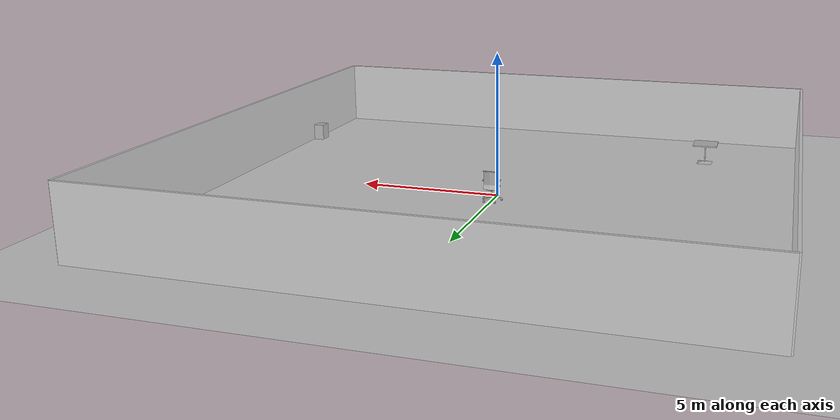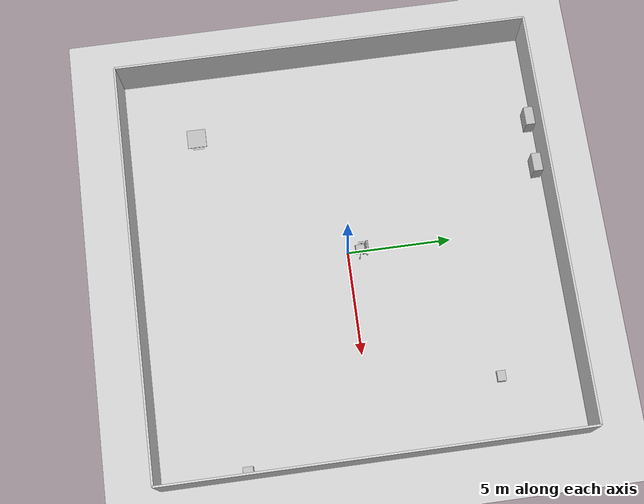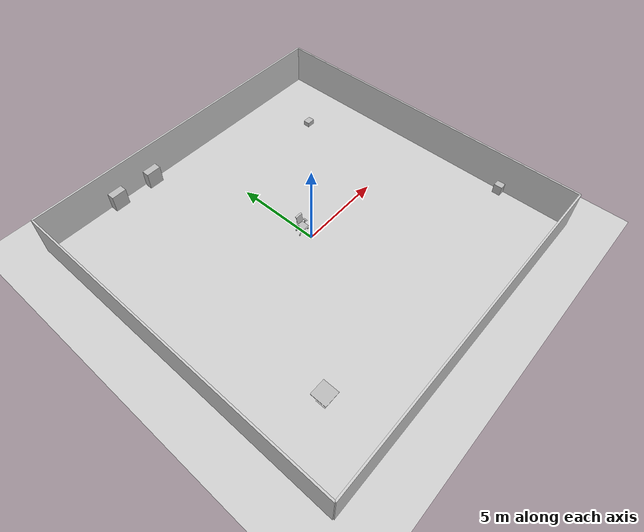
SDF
<sdf version="1.7">
 <world name="test_room">
  <light name="sun" type="directional">
   <pose>0 0 10 0 -0 0</pose>
   <diffuse>0.8 0.8 0.8 1</diffuse>
   <specular>0.2 0.2 0.2 1</specular>
   <attenuation>
    <range>1000</range>
    <constant>0.9</constant>
    <linear>0.01</linear>
    <quadratic>0.001</quadratic>
   </attenuation>
   <direction>-0.5 0.1 -0.9</direction>
   <spot><inner_angle>0</inner_angle><outer_angle>0</outer_angle><falloff>0</falloff></spot>
  </light>
  <model name="ground_plane">
   <static>1</static>
   <link name="link">
    <collision name="collision">
     <geometry><plane><normal>0 0 1</normal><size>100 100</size></plane></geometry>
     <surface>
      <contact><collide_bitmask>65535</collide_bitmask></contact>
      <friction><ode><mu>100</mu><mu2>50</mu2></ode></friction>
     </surface>
    </collision>
    <visual name="visual">
     <cast_shadows>0</cast_shadows>
     <geometry><plane><normal>0 0 1</normal><size>100 100</size></plane></geometry>
     <material>
      <script><uri>file://media/materials/scripts/gazebo.material</uri><name>Gazebo/Grey</name></script>
     </material>
    </visual>
   </link>
  </model>
  <model name="room">
   <static>1</static>
   <link name="walls">
    <visual name="back_visual">
     <geometry><box><size>20 0.1 2.5</size></box></geometry>
     <pose>0 -10 1.25 0 -0 0</pose>
     <material><ambient>0.8 0.8 0.8 1</ambient></material>
    </visual>
    <visual name="front_visual">
     <geometry><box><size>20 0.1 2.5</size></box></geometry>
     <pose>0 10 1.25 0 -0 0</pose>
     <material><ambient>0.8 0.8 0.8 1</ambient></material>
    </visual>
    <visual name="left_visual">
     <geometry><box><size>0.1 20 2.5</size></box></geometry>
     <pose>-10 0 1.25 0 -0 0</pose>
     <material><ambient>0.8 0.8 0.8 1</ambient></material>
    </visual>
    <visual name="right_visual">
     <geometry><box><size>0.1 20 2.5</size></box></geometry>
     <pose>10 0 1.25 0 -0 0</pose>
     <material><ambient>0.8 0.8 0.8 1</ambient></material>
    </visual>
   </link>
  </model>
  <gravity>0 0 -9.8</gravity>
  <magnetic_field>6e-06 2.3e-05 -4.2e-05</magnetic_field>
  <atmosphere type="adiabatic"/>
  <physics type="ode">
   <max_step_size>0.001</max_step_size>
   <real_time_factor>1</real_time_factor>
   <real_time_update_rate>1000</real_time_update_rate>
  </physics>
  <scene><ambient>0.4 0.4 0.4 1</ambient><background>0.7 0.7 0.7 1</background><shadows>1</shadows></scene>
  <audio><device>default</device></audio>
  <spherical_coordinates>
   <surface_model>EARTH_WGS84</surface_model>
   <latitude_deg>0</latitude_deg>
   <longitude_deg>0</longitude_deg>
   <elevation>0</elevation>
   <heading_deg>0</heading_deg>
  </spherical_coordinates>
  <model name="OfficeChairGrey">
   <static>1</static>
   <link name="body">
    <visual name="visual">
     <geometry><mesh><uri>model://OfficeChairGrey/meshes/OfficeChairGrey.obj</uri></mesh></geometry>
    </visual>
    <collision name="collision">
     <geometry><mesh><uri>model://OfficeChairGrey/meshes/OfficeChairGrey_Col.obj</uri></mesh></geometry>
    </collision>
   </link>
   <pose>0.006028 0.520727 0 0 -0 0</pose>
  </model>
  <model name="WhiteCabinet">
   <static>1</static>
   <link name="body">
    <visual name="visual">
     <geometry><mesh><uri>model://WhiteCabinet/meshes/WhiteCabinet.obj</uri></mesh></geometry>
    </visual>
    <collision name="collision">
     <geometry><mesh><uri>model://WhiteCabinet/meshes/WhiteCabinet.obj</uri></mesh></geometry>
    </collision>
   </link>
   <pose>-5.43107 9.70393 0 0 -0 0</pose>
  </model>
  <model name="WhiteCabinet_0">
   <static>1</static>
   <link name="body">
    <visual name="visual">
     <geometry><mesh><uri>model://WhiteCabinet/meshes/WhiteCabinet.obj</uri></mesh></geometry>
    </visual>
    <collision name="collision">
     <geometry><mesh><uri>model://WhiteCabinet/meshes/WhiteCabinet.obj</uri></mesh></geometry>
    </collision>
   </link>
   <pose>-3.02578 9.66135 0 0 -0 0</pose>
  </model>
  <model name="cardboard_box">
   <pose>6.91654 6.31066 0.149 0 -0 0</pose>
   <link name="link">
    <inertial>
     <mass>2</mass>
     <inertia>
      <ixx>0.0416667</ixx>
      <ixy>0</ixy>
      <ixz>0</ixz>
      <iyy>0.0566667</iyy>
      <iyz>0</iyz>
      <izz>0.0683333</izz>
     </inertia>
    </inertial>
    <collision name="collision">
     <geometry><box><size>0.5 0.4 0.3</size></box></geometry>
     <surface>
      <friction><ode><mu>1</mu><mu2>1</mu2></ode></friction>
      <contact><ode><kp>1e+07</kp><kd>1</kd><min_depth>0.001</min_depth><max_vel>0.1</max_vel></ode></contact>
     </surface>
    </collision>
    <visual name="visual">
     <pose>0 0 -0.15 0 -0 0</pose>
     <geometry>
      <mesh><uri>model://cardboard_box/meshes/cardboard_box.dae</uri><scale>1.25932 1.00745 0.755591</scale></mesh>
     </geometry>
    </visual>
   </link>
  </model>
  <model name="OfficeChairBlue">
   <static>1</static>
   <link name="body">
    <visual name="visual"><geometry><mesh><uri>model://Drawer/meshes/Drawer.obj</uri></mesh></geometry></visual>
    <collision name="collision">
     <geometry><mesh><uri>model://Drawer/meshes/Drawer.obj</uri></mesh></geometry>
    </collision>
   </link>
   <pose>9.72097 -5.89486 0 0 -0 0</pose>
  </model>
  <model name="cafe_table">
   <static>1</static>
   <link name="link">
    <collision name="surface">
     <pose>0 0 0.755 0 -0 0</pose>
     <geometry><box><size>0.913 0.913 0.04</size></box></geometry>
    </collision>
    <collision name="column">
     <pose>0 0 0.37 0 -0 0</pose>
     <geometry><box><size>0.042 0.042 0.74</size></box></geometry>
    </collision>
    <collision name="base">
     <pose>0 0 0.02 0 -0 0</pose>
     <geometry><box><size>0.56 0.56 0.04</size></box></geometry>
    </collision>
    <visual name="visual">
     <geometry><mesh><uri>model://cafe_table/meshes/cafe_table.dae</uri></mesh></geometry>
    </visual>
   </link>
   <pose>-6.54458 -6.57116 0 0 -0 0</pose>
  </model>
 </world>
</sdf>
